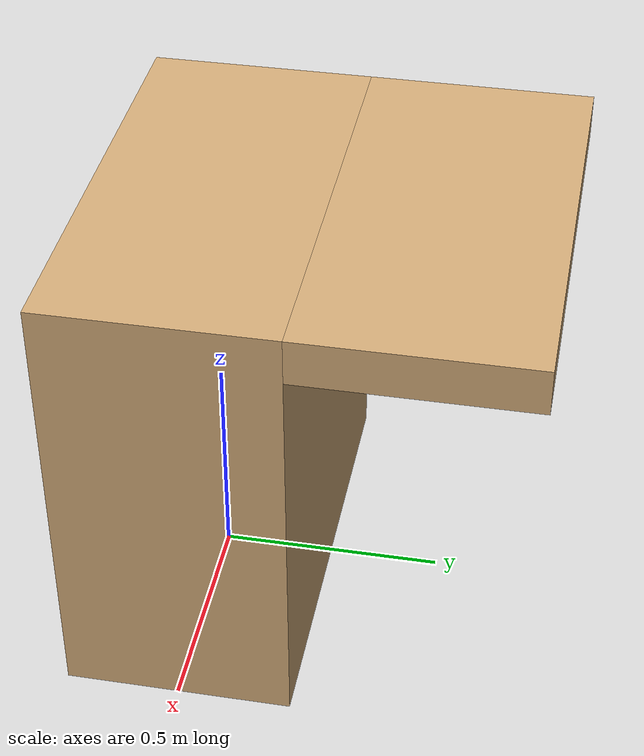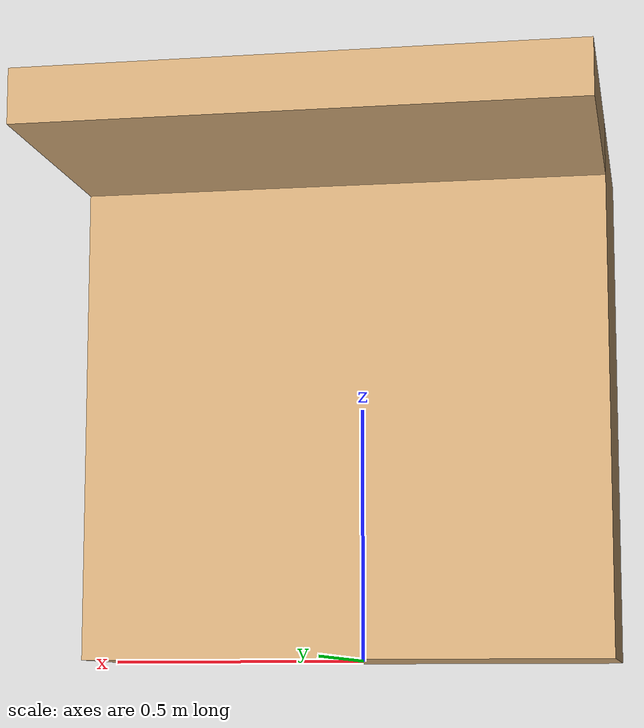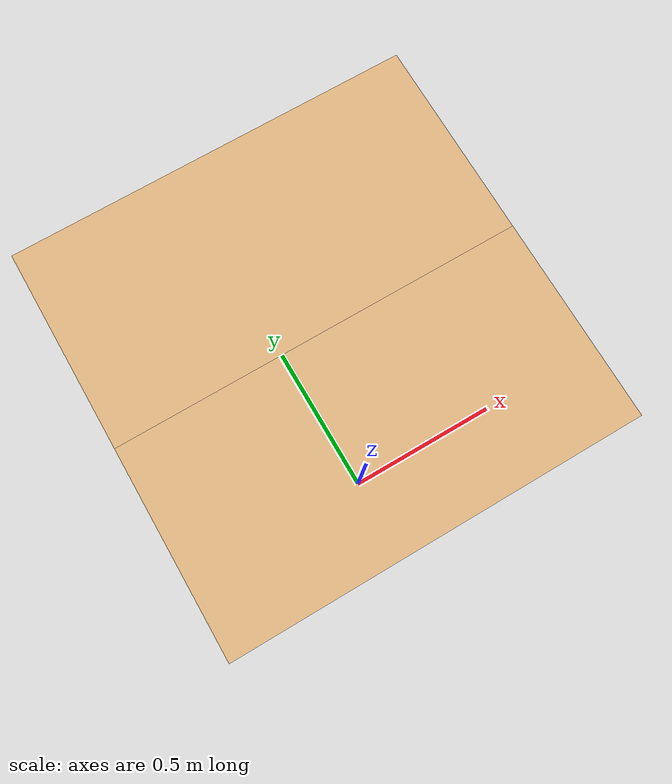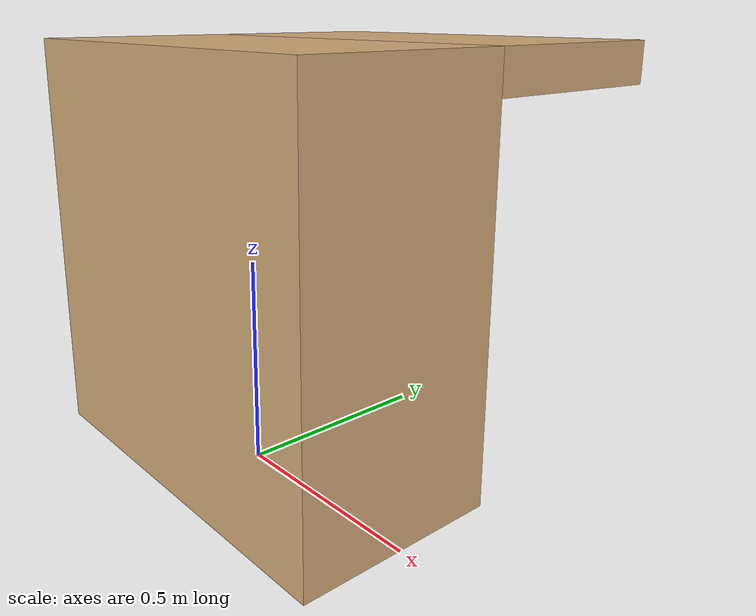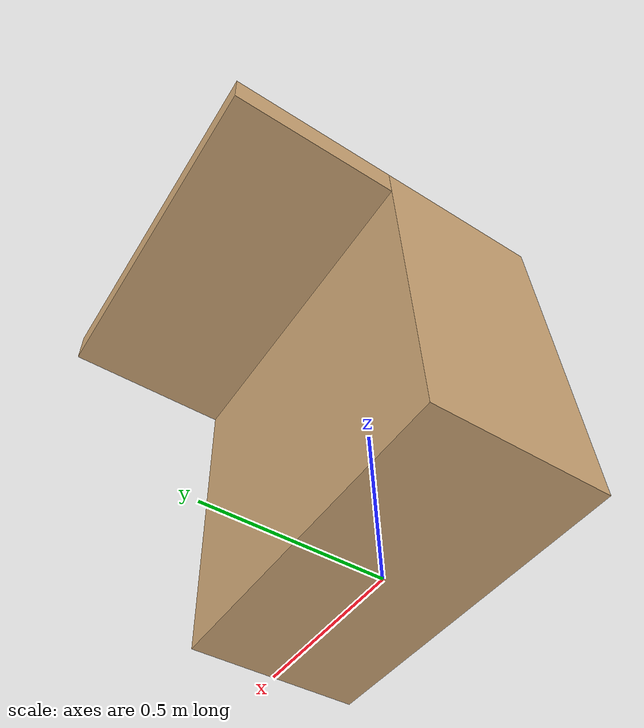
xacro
<?xml version="1.0" encoding="UTF-8"?>
<robot xmlns:xacro="http://ros.org/wiki/xacro" name="slanted_table">

  <xacro:arg name="include_slant" default="true"/>
  <xacro:arg name="height"        default="1.0"/>
  <xacro:arg name="angle"         default="0.0"/>
  <xacro:arg name="bowl"          default="false"/>
  <xacro:arg name="cylinder"      default="false"/>

  <xacro:property name="h" value="$(arg height)"/>
  <xacro:property name="theta" value="$(arg angle)"/>
  <xacro:property name="pi" value="3.14159265359"/>

  <xacro:macro name="support_model">
    <origin xyz="0 0 ${h/2}" rpy="0 0 0" />
    <geometry>
      <box size="1.0 0.5 ${h}" />
    </geometry>
  </xacro:macro>

  <xacro:macro name="table_surface_model">
    <origin xyz="0 0.5 ${h-0.05}" rpy="0 ${theta*pi/180} 0" />
    <geometry>
      <box size="1.0 0.5 0.1" />
    </geometry>
  </xacro:macro>

  <link name="support_link">
    <inertial>
      <origin xyz="0 0 0" rpy="0 0 0"/>
      <mass value="1000"/>
      <inertia ixx="1.0"  ixy="0"  ixz="0" iyy="1.0" iyz="0" izz="1.0" />
    </inertial>
    <visual>
      <xacro:support_model/>
      <material name="table_color">
	<color rgba="${210/255} ${170/255} ${120/255} 1.0"/>
      </material>
    </visual>
    <collision>
      <xacro:support_model/>
    </collision>
  </link>

  <xacro:if value="$(arg include_slant)">
    <link name="table_surface_link">
      <inertial>
	<origin xyz="0 0 0" rpy="0 0 0"/>
	<mass value="10"/>
	<inertia ixx="1.0"  ixy="0"  ixz="0" iyy="1.0" iyz="0" izz="1.0" />
      </inertial>
      <visual>
	<xacro:table_surface_model/>
	<material name="table_color">
	  <color rgba="${210/255} ${170/255} ${120/255} 1.0"/>
	</material>
      </visual>
      <collision>
	<xacro:table_surface_model/>
      </collision>
    </link>

    <joint name="suface_support_joint" type="fixed">
      <origin xyz="0 0 0" rpy="0 0 0" />
      <parent link="support_link" />
      <child link="table_surface_link" />
    </joint>

    <gazebo reference="table_surface_link">
      <mu1>0.01</mu1> <!-- TEMPORARY can make higher to be more like a table -->
      <mu2>0.01</mu2>
      <material>Gazebo/Wood</material>
    </gazebo>
  </xacro:if>

  <xacro:if value="$(arg bowl)">
    <xacro:include filename="$(find ll4ma_robots_description)/urdf/environment/bowl.urdf.xacro"/>
    <joint name="bowl_to_table" type="fixed">
      <origin xyz="0 0.5 ${h}" rpy="0 0 0"/>
      <parent link="table_surface_link"/>
      <child link="bowl_link"/>
    </joint>
  </xacro:if>

  <xacro:if value="$(arg cylinder)">
    <link name="cylinder_link">
      <inertial>
	<origin xyz="0 0 0" rpy="0 0 0"/>
	<mass value="1.0"/>
	<inertia ixx="1.0"  ixy="0"  ixz="0" iyy="1.0" iyz="0" izz="1.0" />
      </inertial>
      <visual>
	<origin xyz="0 0 0" rpy="0 0 0" />
	<geometry>
	  <cylinder radius="0.3" length="0.1"/>
	</geometry>
      </visual>
      <collision>
	<origin xyz="0 0 0" rpy="0 0 0" />
	<geometry>
	  <cylinder radius="0.3" length="0.1"/>
	</geometry>
      </collision>
    </link>

    <joint name="cylinder_surface_joint" type="fixed">
      <origin xyz="-0.2 0.5 ${h+0.05}" rpy="0 0 0" />
      <parent link="table_surface_link" />
      <child link="cylinder_link" />
    </joint>

    <gazebo reference="cylinder_link">
      <mu1>0.01</mu1> <!-- TEMPORARY can make higher to be more like a table -->
      <mu2>0.01</mu2>
      <material>Gazebo/Wood</material>
    </gazebo>
  </xacro:if>

  <gazebo reference="support_link">
    <mu1>0.01</mu1> <!-- TEMPORARY can make higher to be more like a table -->
    <mu2>0.01</mu2>
    <material>Gazebo/Wood</material>
  </gazebo>

</robot>
